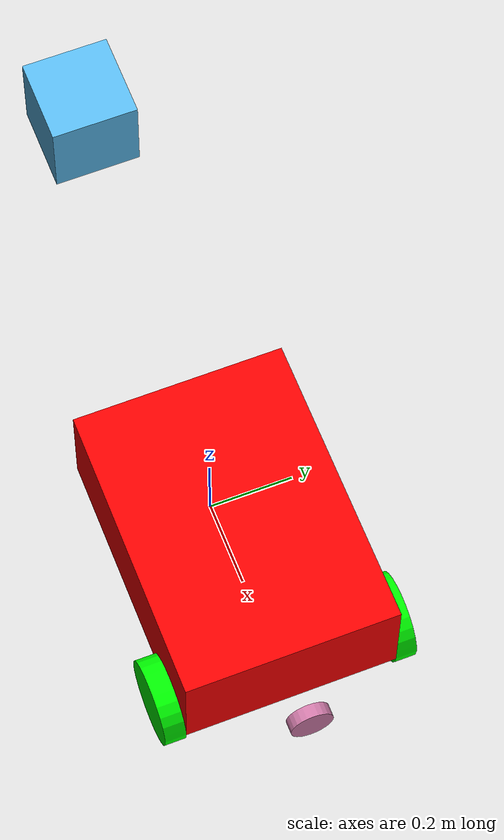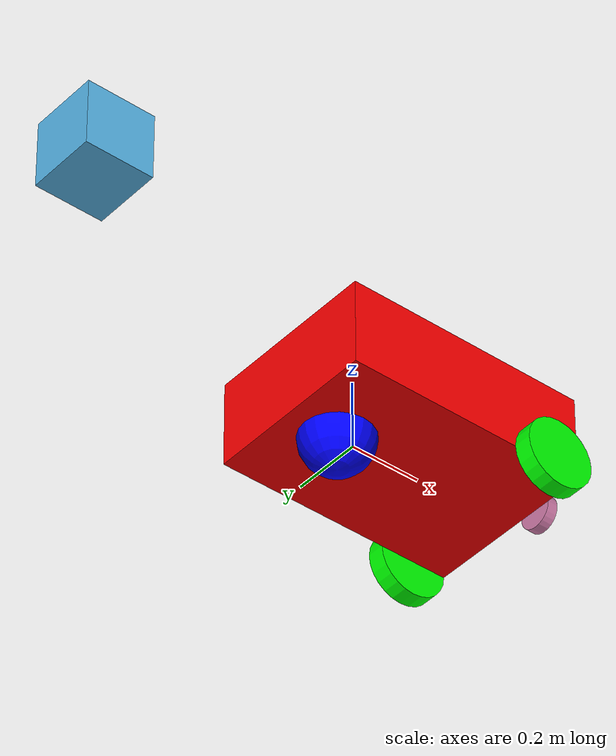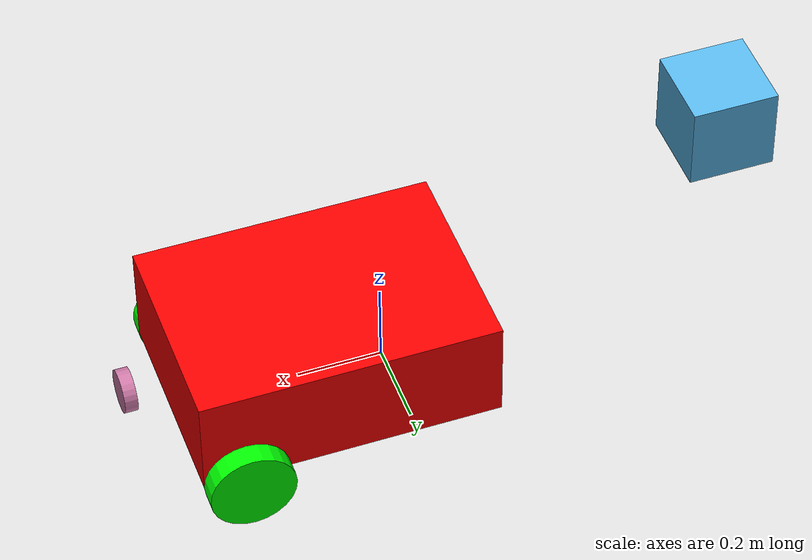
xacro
<?xml version="1.0"?>
<robot name="lf_robot" xmlns:xacro="http://www.ros.org/wiki/xacro">
    <xacro:include filename="inertia_macro.xacro"/>

    <material name="black">
        <color rgba="0 0 0 1"/>
    </material>

    <material name="red">
        <color rgba="1 0 0 1"/>
    </material>

    <material name="green">
        <color rgba="0 1 0 1"/>
    </material>

    <material name="blue">
        <color rgba="0 0 1 1"/>
    </material>

    <material name="yellow">
        <color rgba="1 1 0 1"/>
    </material>

    <material name="purple">
        <color rgba="0.5 0 0.5 1"/>
    </material>

    <!--BASE LINK-->
    <link name="base_link">
    </link>

    <!--BODY JOINT-->
    <joint name="body_joint" type="fixed">
        <parent link="base_link"/>
        <child link="body_link"/>
        <origin xyz="-0.1 0 0"/>
    </joint>

    <link name="cylinder_sensor">
        <visual>
            <geometry>
                <box size="0.2 0.2 0.2"/>
            </geometry>
        </visual>
    </link>
    <joint name="cylinder_link" type="fixed">
        <parent link="base_link"/>
        <child link="cylinder_sensor"/>
        <origin xyz="-0.8 0 0.5" rpy="0 0 0"/>
        <axis xyz="0 0 1"/>
    </joint>

    <!--BODY LINK-->
    <link name="body_link">
        <visual>
            <origin xyz="0.25 0 0.125"/>
            <geometry>
                <box size="0.7 0.5 0.25"/>
            </geometry>
            <material name="red"/>
        </visual>
        <collision>
            <origin xyz="0.35 0 0.125"/>
            <geometry>
                <box size="0.7 0.5 0.25"/>
            </geometry>
        </collision>
        <xacro:inertial_box mass="0.3" x="0.7" y="0.5" z="0.25">
            <origin xyz="0.35 0 0.125" rpy="0 0 0"/>
        </xacro:inertial_box>

    </link>

    <!--RIGHT WHEEL LINK-->
    <link name="right_wheel_link">
        <visual>
            <origin xyz="0 0 0"/>
            <geometry>
                <cylinder radius="0.1" length="0.05"/>
            </geometry>
            <material name="green"/>
        </visual>
        <collision>
            <origin xyz="0 0 0"/>
            <geometry>
                <cylinder radius="0.1" length="0.05"/>
            </geometry>
        </collision>
        <xacro:inertial_cylinder mass="0.1" length="0.05" radius="0.1">
            <origin xyz="0 0 0" rpy="0 0 0"/>
        </xacro:inertial_cylinder>
    </link>

    <!--RIGHT WHEEL JOINT-->
    <joint name="right_wheel_joint" type="continuous">
        <parent link="base_link"/>
        <child link="right_wheel_link"/>
        <origin xyz="0.4 -0.275 0" rpy="${pi/2} 0 0"/>
        <axis xyz="0 0 1"/>
    </joint>

    <!--LEFT WHEEL LINK-->
    <link name="left_wheel_link">
        <visual>
            <origin xyz="0 0 0"/>
            <geometry>
                <cylinder radius="0.1" length="0.05"/>
            </geometry>
            <material name="green"/>
        </visual>
        <collision>
            <origin xyz="0 0 0"/>
            <geometry>
                <cylinder radius="0.1" length="0.05"/>
            </geometry>
        </collision>
        <xacro:inertial_cylinder mass="0.1" length="0.05" radius="0.1">
            <origin xyz="0 0 0" rpy="0 0 0"/>
        </xacro:inertial_cylinder>
    </link>

    <!--LEFT WHEEL JOINT-->
    <joint name="left_wheel_joint" type="continuous">
        <parent link="base_link"/>
        <child link="left_wheel_link"/>
        <origin xyz="0.4 0.275 0" rpy="${pi/2} 0 0"/>
        <axis xyz="0 0 1"/>
    </joint>

    <!--FRONT WHEEL LINK-->
    <link name="front_wheel_link">
        <visual>
            <origin xyz="0.2 0 0"/>
            <geometry>
                <sphere radius="0.1"/>
            </geometry>
            <material name="blue"/>
        </visual>
        <collision>
            <origin xyz="0.2 0 0"/>
            <geometry>
                <sphere radius="0.1"/>
            </geometry>
        </collision>
        <xacro:inertial_sphere mass="0.1" radius="0.1">
            <origin xyz="0.2 0 0" rpy="0 0 0"/>
        </xacro:inertial_sphere>
    </link>

    <!--FRONT WHEEL JOINT-->
    <joint name="front_wheel_joint" type="fixed">
        <parent link="body_link"/>
        <child link="front_wheel_link"/>
        <origin xyz="-0.15 0 0" rpy="0 0 0"/>
    </joint>

        <joint name="laser_joint" type="fixed">
        <parent link="body_link"/>
        <child link="laser_frame"/>
        <origin xyz="0.7 0 0.1" rpy="0 1.57 0"/>
    </joint>

    <link name="laser_frame">
        <visual>
            <origin xyz="0 0 0"/>
            <geometry>
                <cylinder radius="0.05" length="0.03"/>
            </geometry>
        </visual>
        <collision>
            <origin xyz="0 0 0"/>
            <geometry>
                <cylinder radius="0.05" length="0.03"/>
            </geometry>
        </collision>
        <xacro:inertial_cylinder mass="0.1" radius="0.05" length="0.03">
            <origin xyz="0 0 0" rpy="0 0 0"/>
        </xacro:inertial_cylinder>
    </link>
</robot>
